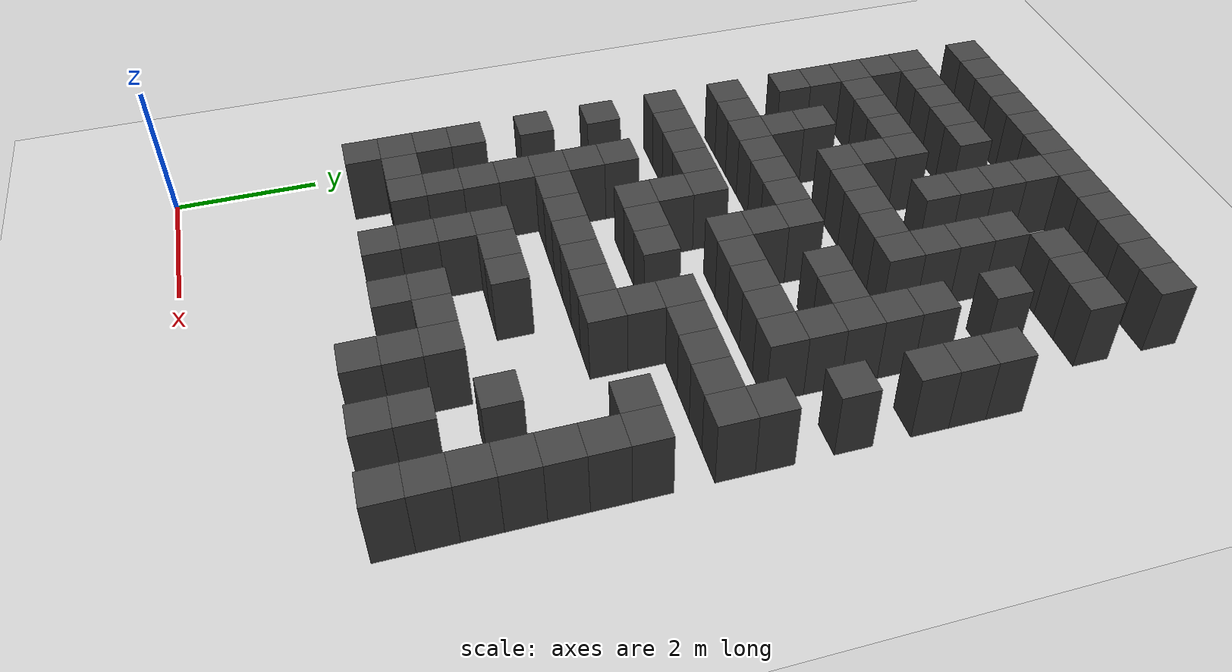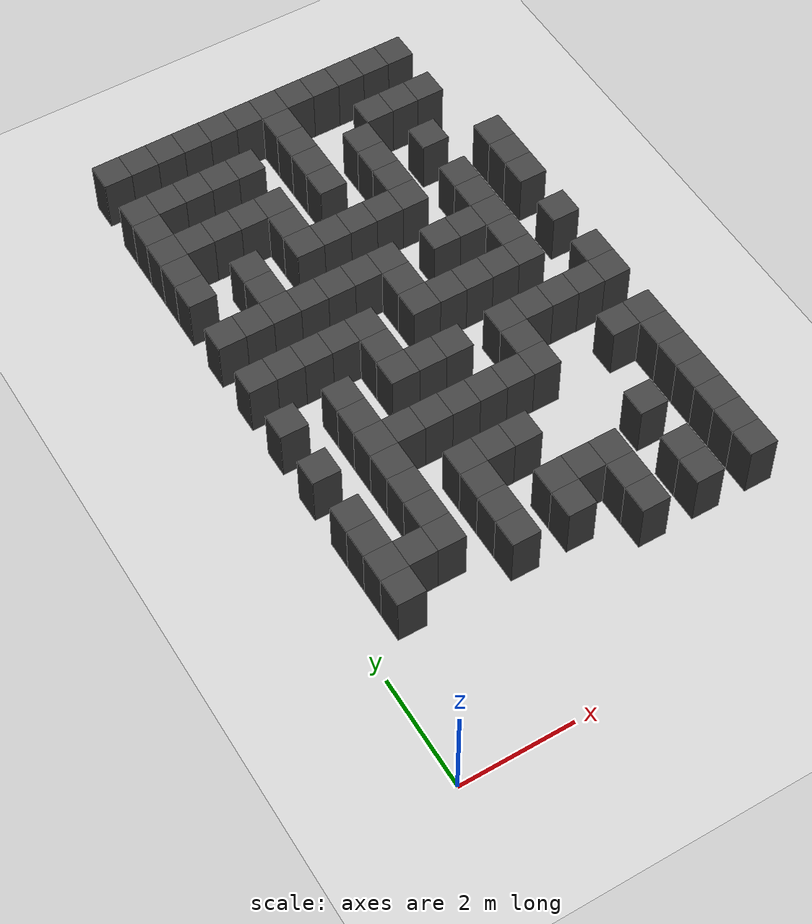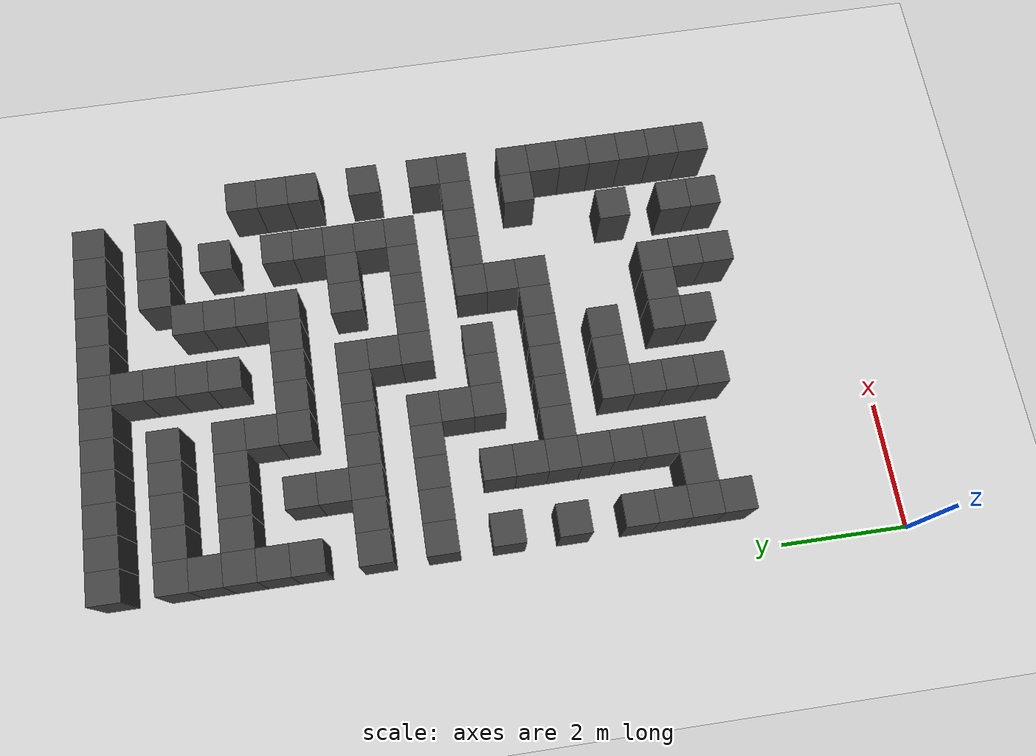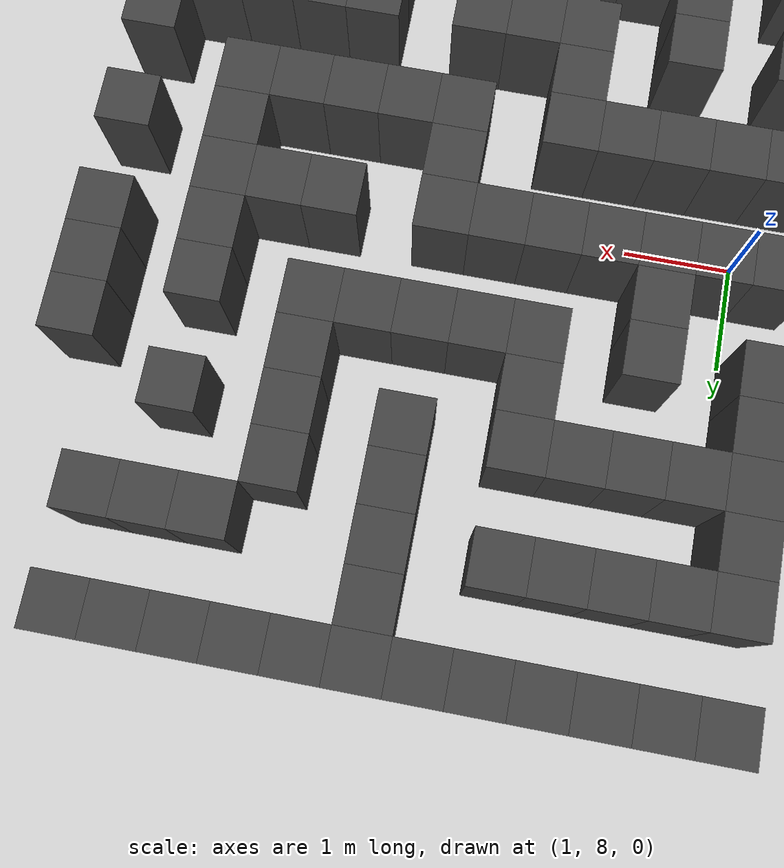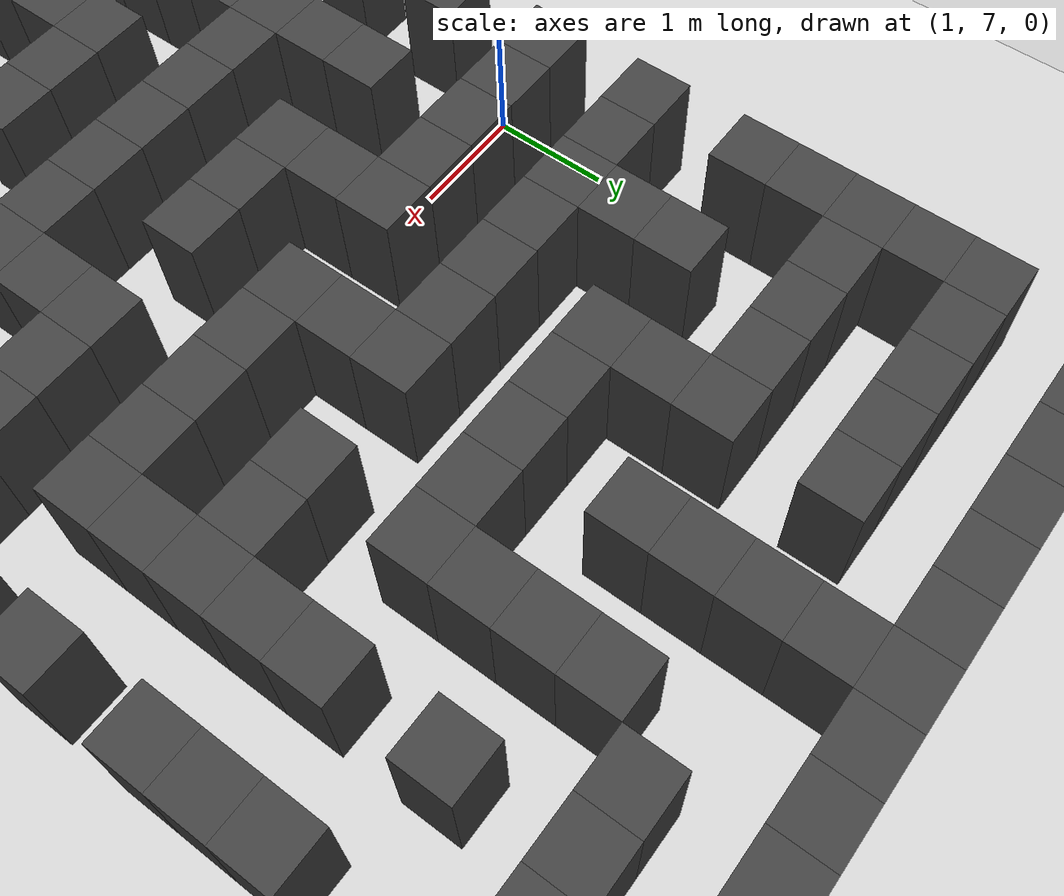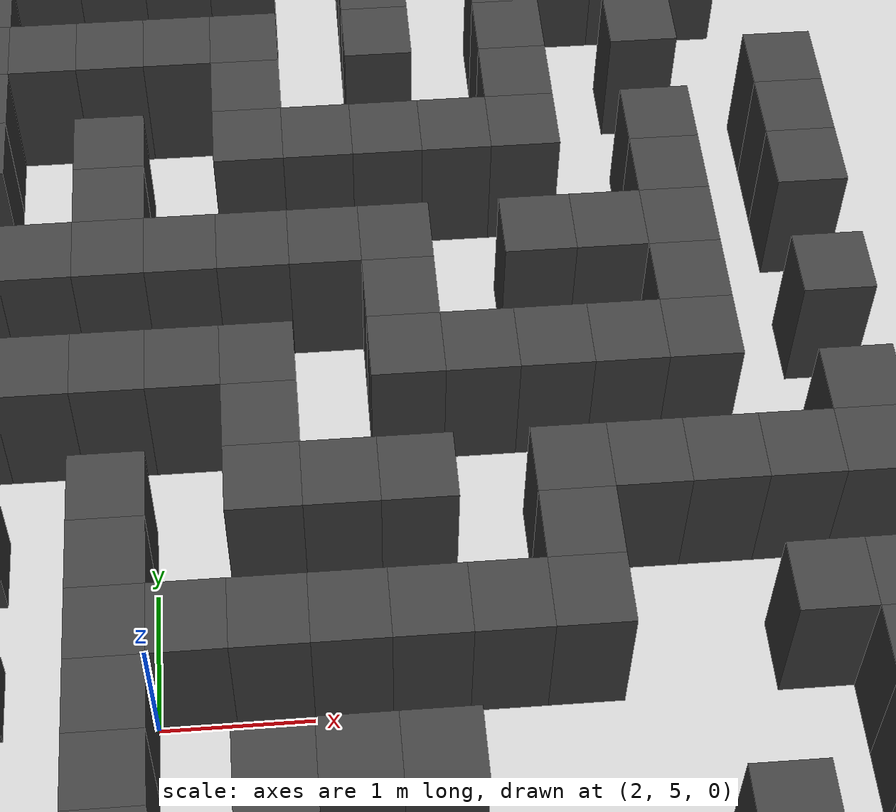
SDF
<sdf version="1.7">
 <world name="map_16783">
  <model name="ground_plane">
   <static>true</static>
   <link name="link">
    <collision name="collision">
     <geometry><plane><normal>0 0 1</normal><size>200 200</size></plane></geometry>
    </collision>
    <visual name="visual">
     <geometry><plane><normal>0 0 1</normal><size>200 200</size></plane></geometry>
     <material><ambient>0.8 0.8 0.8 1</ambient><diffuse>0.8 0.8 0.8 1</diffuse></material>
    </visual>
   </link>
  </model>
  <model name="maze_environment">
   <static>true</static>
   <link name="wall_26">
    <pose>0.750 12.250 0.500 0 0 0</pose>
    <collision name="col"><geometry><box><size>0.5 0.5 1.0</size></box></geometry></collision>
    <visual name="vis">
     <geometry><box><size>0.5 0.5 1.0</size></box></geometry>
     <material><ambient>0.15 0.15 0.15 1</ambient><diffuse>0.25 0.25 0.25 1</diffuse></material>
    </visual>
   </link>
   <link name="wall_27">
    <pose>1.250 12.250 0.500 0 0 0</pose>
    <collision name="col"><geometry><box><size>0.5 0.5 1.0</size></box></geometry></collision>
    <visual name="vis">
     <geometry><box><size>0.5 0.5 1.0</size></box></geometry>
     <material><ambient>0.15 0.15 0.15 1</ambient><diffuse>0.25 0.25 0.25 1</diffuse></material>
    </visual>
   </link>
   <link name="wall_28">
    <pose>1.750 12.250 0.500 0 0 0</pose>
    <collision name="col"><geometry><box><size>0.5 0.5 1.0</size></box></geometry></collision>
    <visual name="vis">
     <geometry><box><size>0.5 0.5 1.0</size></box></geometry>
     <material><ambient>0.15 0.15 0.15 1</ambient><diffuse>0.25 0.25 0.25 1</diffuse></material>
    </visual>
   </link>
   <link name="wall_29">
    <pose>2.250 12.250 0.500 0 0 0</pose>
    <collision name="col"><geometry><box><size>0.5 0.5 1.0</size></box></geometry></collision>
    <visual name="vis">
     <geometry><box><size>0.5 0.5 1.0</size></box></geometry>
     <material><ambient>0.15 0.15 0.15 1</ambient><diffuse>0.25 0.25 0.25 1</diffuse></material>
    </visual>
   </link>
   <link name="wall_30">
    <pose>2.750 12.250 0.500 0 0 0</pose>
    <collision name="col"><geometry><box><size>0.5 0.5 1.0</size></box></geometry></collision>
    <visual name="vis">
     <geometry><box><size>0.5 0.5 1.0</size></box></geometry>
     <material><ambient>0.15 0.15 0.15 1</ambient><diffuse>0.25 0.25 0.25 1</diffuse></material>
    </visual>
   </link>
   <link name="wall_31">
    <pose>3.250 12.250 0.500 0 0 0</pose>
    <collision name="col"><geometry><box><size>0.5 0.5 1.0</size></box></geometry></collision>
    <visual name="vis">
     <geometry><box><size>0.5 0.5 1.0</size></box></geometry>
     <material><ambient>0.15 0.15 0.15 1</ambient><diffuse>0.25 0.25 0.25 1</diffuse></material>
    </visual>
   </link>
   <link name="wall_32">
    <pose>3.750 12.250 0.500 0 0 0</pose>
    <collision name="col"><geometry><box><size>0.5 0.5 1.0</size></box></geometry></collision>
    <visual name="vis">
     <geometry><box><size>0.5 0.5 1.0</size></box></geometry>
     <material><ambient>0.15 0.15 0.15 1</ambient><diffuse>0.25 0.25 0.25 1</diffuse></material>
    </visual>
   </link>
   <link name="wall_33">
    <pose>4.250 12.250 0.500 0 0 0</pose>
    <collision name="col"><geometry><box><size>0.5 0.5 1.0</size></box></geometry></collision>
    <visual name="vis">
     <geometry><box><size>0.5 0.5 1.0</size></box></geometry>
     <material><ambient>0.15 0.15 0.15 1</ambient><diffuse>0.25 0.25 0.25 1</diffuse></material>
    </visual>
   </link>
   <link name="wall_34">
    <pose>4.750 12.250 0.500 0 0 0</pose>
    <collision name="col"><geometry><box><size>0.5 0.5 1.0</size></box></geometry></collision>
    <visual name="vis">
     <geometry><box><size>0.5 0.5 1.0</size></box></geometry>
     <material><ambient>0.15 0.15 0.15 1</ambient><diffuse>0.25 0.25 0.25 1</diffuse></material>
    </visual>
   </link>
   <link name="wall_35">
    <pose>5.250 12.250 0.500 0 0 0</pose>
    <collision name="col"><geometry><box><size>0.5 0.5 1.0</size></box></geometry></collision>
    <visual name="vis">
     <geometry><box><size>0.5 0.5 1.0</size></box></geometry>
     <material><ambient>0.15 0.15 0.15 1</ambient><diffuse>0.25 0.25 0.25 1</diffuse></material>
    </visual>
   </link>
   <link name="wall_36">
    <pose>5.750 12.250 0.500 0 0 0</pose>
    <collision name="col"><geometry><box><size>0.5 0.5 1.0</size></box></geometry></collision>
    <visual name="vis">
     <geometry><box><size>0.5 0.5 1.0</size></box></geometry>
     <material><ambient>0.15 0.15 0.15 1</ambient><diffuse>0.25 0.25 0.25 1</diffuse></material>
    </visual>
   </link>
   <link name="wall_37">
    <pose>6.250 12.250 0.500 0 0 0</pose>
    <collision name="col"><geometry><box><size>0.5 0.5 1.0</size></box></geometry></collision>
    <visual name="vis">
     <geometry><box><size>0.5 0.5 1.0</size></box></geometry>
     <material><ambient>0.15 0.15 0.15 1</ambient><diffuse>0.25 0.25 0.25 1</diffuse></material>
    </visual>
   </link>
   <link name="wall_55">
    <pose>3.750 11.750 0.500 0 0 0</pose>
    <collision name="col"><geometry><box><size>0.5 0.5 1.0</size></box></geometry></collision>
    <visual name="vis">
     <geometry><box><size>0.5 0.5 1.0</size></box></geometry>
     <material><ambient>0.15 0.15 0.15 1</ambient><diffuse>0.25 0.25 0.25 1</diffuse></material>
    </visual>
   </link>
   <link name="wall_76">
    <pose>0.750 11.250 0.500 0 0 0</pose>
    <collision name="col"><geometry><box><size>0.5 0.5 1.0</size></box></geometry></collision>
    <visual name="vis">
     <geometry><box><size>0.5 0.5 1.0</size></box></geometry>
     <material><ambient>0.15 0.15 0.15 1</ambient><diffuse>0.25 0.25 0.25 1</diffuse></material>
    </visual>
   </link>
   <link name="wall_77">
    <pose>1.250 11.250 0.500 0 0 0</pose>
    <collision name="col"><geometry><box><size>0.5 0.5 1.0</size></box></geometry></collision>
    <visual name="vis">
     <geometry><box><size>0.5 0.5 1.0</size></box></geometry>
     <material><ambient>0.15 0.15 0.15 1</ambient><diffuse>0.25 0.25 0.25 1</diffuse></material>
    </visual>
   </link>
   <link name="wall_78">
    <pose>1.750 11.250 0.500 0 0 0</pose>
    <collision name="col"><geometry><box><size>0.5 0.5 1.0</size></box></geometry></collision>
    <visual name="vis">
     <geometry><box><size>0.5 0.5 1.0</size></box></geometry>
     <material><ambient>0.15 0.15 0.15 1</ambient><diffuse>0.25 0.25 0.25 1</diffuse></material>
    </visual>
   </link>
   <link name="wall_79">
    <pose>2.250 11.250 0.500 0 0 0</pose>
    <collision name="col"><geometry><box><size>0.5 0.5 1.0</size></box></geometry></collision>
    <visual name="vis">
     <geometry><box><size>0.5 0.5 1.0</size></box></geometry>
     <material><ambient>0.15 0.15 0.15 1</ambient><diffuse>0.25 0.25 0.25 1</diffuse></material>
    </visual>
   </link>
   <link name="wall_80">
    <pose>2.750 11.250 0.500 0 0 0</pose>
    <collision name="col"><geometry><box><size>0.5 0.5 1.0</size></box></geometry></collision>
    <visual name="vis">
     <geometry><box><size>0.5 0.5 1.0</size></box></geometry>
     <material><ambient>0.15 0.15 0.15 1</ambient><diffuse>0.25 0.25 0.25 1</diffuse></material>
    </visual>
   </link>
   <link name="wall_81">
    <pose>3.750 11.250 0.500 0 0 0</pose>
    <collision name="col"><geometry><box><size>0.5 0.5 1.0</size></box></geometry></collision>
    <visual name="vis">
     <geometry><box><size>0.5 0.5 1.0</size></box></geometry>
     <material><ambient>0.15 0.15 0.15 1</ambient><diffuse>0.25 0.25 0.25 1</diffuse></material>
    </visual>
   </link>
   <link name="wall_82">
    <pose>5.250 11.250 0.500 0 0 0</pose>
    <collision name="col"><geometry><box><size>0.5 0.5 1.0</size></box></geometry></collision>
    <visual name="vis">
     <geometry><box><size>0.5 0.5 1.0</size></box></geometry>
     <material><ambient>0.15 0.15 0.15 1</ambient><diffuse>0.25 0.25 0.25 1</diffuse></material>
    </visual>
   </link>
   <link name="wall_83">
    <pose>5.750 11.250 0.500 0 0 0</pose>
    <collision name="col"><geometry><box><size>0.5 0.5 1.0</size></box></geometry></collision>
    <visual name="vis">
     <geometry><box><size>0.5 0.5 1.0</size></box></geometry>
     <material><ambient>0.15 0.15 0.15 1</ambient><diffuse>0.25 0.25 0.25 1</diffuse></material>
    </visual>
   </link>
   <link name="wall_84">
    <pose>6.250 11.250 0.500 0 0 0</pose>
    <collision name="col"><geometry><box><size>0.5 0.5 1.0</size></box></geometry></collision>
    <visual name="vis">
     <geometry><box><size>0.5 0.5 1.0</size></box></geometry>
     <material><ambient>0.15 0.15 0.15 1</ambient><diffuse>0.25 0.25 0.25 1</diffuse></material>
    </visual>
   </link>
   <link name="wall_100">
    <pose>0.750 10.750 0.500 0 0 0</pose>
    <collision name="col"><geometry><box><size>0.5 0.5 1.0</size></box></geometry></collision>
    <visual name="vis">
     <geometry><box><size>0.5 0.5 1.0</size></box></geometry>
     <material><ambient>0.15 0.15 0.15 1</ambient><diffuse>0.25 0.25 0.25 1</diffuse></material>
    </visual>
   </link>
   <link name="wall_101">
    <pose>3.750 10.750 0.500 0 0 0</pose>
    <collision name="col"><geometry><box><size>0.5 0.5 1.0</size></box></geometry></collision>
    <visual name="vis">
     <geometry><box><size>0.5 0.5 1.0</size></box></geometry>
     <material><ambient>0.15 0.15 0.15 1</ambient><diffuse>0.25 0.25 0.25 1</diffuse></material>
    </visual>
   </link>
   <link name="wall_102">
    <pose>4.750 10.750 0.500 0 0 0</pose>
    <collision name="col"><geometry><box><size>0.5 0.5 1.0</size></box></geometry></collision>
    <visual name="vis">
     <geometry><box><size>0.5 0.5 1.0</size></box></geometry>
     <material><ambient>0.15 0.15 0.15 1</ambient><diffuse>0.25 0.25 0.25 1</diffuse></material>
    </visual>
   </link>
   <link name="wall_124">
    <pose>0.750 10.250 0.500 0 0 0</pose>
    <collision name="col"><geometry><box><size>0.5 0.5 1.0</size></box></geometry></collision>
    <visual name="vis">
     <geometry><box><size>0.5 0.5 1.0</size></box></geometry>
     <material><ambient>0.15 0.15 0.15 1</ambient><diffuse>0.25 0.25 0.25 1</diffuse></material>
    </visual>
   </link>
   <link name="wall_125">
    <pose>1.250 10.250 0.500 0 0 0</pose>
    <collision name="col"><geometry><box><size>0.5 0.5 1.0</size></box></geometry></collision>
    <visual name="vis">
     <geometry><box><size>0.5 0.5 1.0</size></box></geometry>
     <material><ambient>0.15 0.15 0.15 1</ambient><diffuse>0.25 0.25 0.25 1</diffuse></material>
    </visual>
   </link>
   <link name="wall_126">
    <pose>1.750 10.250 0.500 0 0 0</pose>
    <collision name="col"><geometry><box><size>0.5 0.5 1.0</size></box></geometry></collision>
    <visual name="vis">
     <geometry><box><size>0.5 0.5 1.0</size></box></geometry>
     <material><ambient>0.15 0.15 0.15 1</ambient><diffuse>0.25 0.25 0.25 1</diffuse></material>
    </visual>
   </link>
   <link name="wall_127">
    <pose>2.250 10.250 0.500 0 0 0</pose>
    <collision name="col"><geometry><box><size>0.5 0.5 1.0</size></box></geometry></collision>
    <visual name="vis">
     <geometry><box><size>0.5 0.5 1.0</size></box></geometry>
     <material><ambient>0.15 0.15 0.15 1</ambient><diffuse>0.25 0.25 0.25 1</diffuse></material>
    </visual>
   </link>
   <link name="wall_128">
    <pose>2.750 10.250 0.500 0 0 0</pose>
    <collision name="col"><geometry><box><size>0.5 0.5 1.0</size></box></geometry></collision>
    <visual name="vis">
     <geometry><box><size>0.5 0.5 1.0</size></box></geometry>
     <material><ambient>0.15 0.15 0.15 1</ambient><diffuse>0.25 0.25 0.25 1</diffuse></material>
    </visual>
   </link>
   <link name="wall_129">
    <pose>3.750 10.250 0.500 0 0 0</pose>
    <collision name="col"><geometry><box><size>0.5 0.5 1.0</size></box></geometry></collision>
    <visual name="vis">
     <geometry><box><size>0.5 0.5 1.0</size></box></geometry>
     <material><ambient>0.15 0.15 0.15 1</ambient><diffuse>0.25 0.25 0.25 1</diffuse></material>
    </visual>
   </link>
   <link name="wall_130">
    <pose>4.750 10.250 0.500 0 0 0</pose>
    <collision name="col"><geometry><box><size>0.5 0.5 1.0</size></box></geometry></collision>
    <visual name="vis">
     <geometry><box><size>0.5 0.5 1.0</size></box></geometry>
     <material><ambient>0.15 0.15 0.15 1</ambient><diffuse>0.25 0.25 0.25 1</diffuse></material>
    </visual>
   </link>
   <link name="wall_131">
    <pose>5.750 10.250 0.500 0 0 0</pose>
    <collision name="col"><geometry><box><size>0.5 0.5 1.0</size></box></geometry></collision>
    <visual name="vis">
     <geometry><box><size>0.5 0.5 1.0</size></box></geometry>
     <material><ambient>0.15 0.15 0.15 1</ambient><diffuse>0.25 0.25 0.25 1</diffuse></material>
    </visual>
   </link>
   <link name="wall_147">
    <pose>0.750 9.750 0.500 0 0 0</pose>
    <collision name="col"><geometry><box><size>0.5 0.5 1.0</size></box></geometry></collision>
    <visual name="vis">
     <geometry><box><size>0.5 0.5 1.0</size></box></geometry>
     <material><ambient>0.15 0.15 0.15 1</ambient><diffuse>0.25 0.25 0.25 1</diffuse></material>
    </visual>
   </link>
   <link name="wall_148">
    <pose>2.750 9.750 0.500 0 0 0</pose>
    <collision name="col"><geometry><box><size>0.5 0.5 1.0</size></box></geometry></collision>
    <visual name="vis">
     <geometry><box><size>0.5 0.5 1.0</size></box></geometry>
     <material><ambient>0.15 0.15 0.15 1</ambient><diffuse>0.25 0.25 0.25 1</diffuse></material>
    </visual>
   </link>
   <link name="wall_149">
    <pose>4.750 9.750 0.500 0 0 0</pose>
    <collision name="col"><geometry><box><size>0.5 0.5 1.0</size></box></geometry></collision>
    <visual name="vis">
     <geometry><box><size>0.5 0.5 1.0</size></box></geometry>
     <material><ambient>0.15 0.15 0.15 1</ambient><diffuse>0.25 0.25 0.25 1</diffuse></material>
    </visual>
   </link>
   <link name="wall_150">
    <pose>6.750 9.750 0.500 0 0 0</pose>
    <collision name="col"><geometry><box><size>0.5 0.5 1.0</size></box></geometry></collision>
    <visual name="vis">
     <geometry><box><size>0.5 0.5 1.0</size></box></geometry>
     <material><ambient>0.15 0.15 0.15 1</ambient><diffuse>0.25 0.25 0.25 1</diffuse></material>
    </visual>
   </link>
   <link name="wall_170">
    <pose>0.750 9.250 0.500 0 0 0</pose>
    <collision name="col"><geometry><box><size>0.5 0.5 1.0</size></box></geometry></collision>
    <visual name="vis">
     <geometry><box><size>0.5 0.5 1.0</size></box></geometry>
     <material><ambient>0.15 0.15 0.15 1</ambient><diffuse>0.25 0.25 0.25 1</diffuse></material>
    </visual>
   </link>
   <link name="wall_171">
    <pose>1.750 9.250 0.500 0 0 0</pose>
    <collision name="col"><geometry><box><size>0.5 0.5 1.0</size></box></geometry></collision>
    <visual name="vis">
     <geometry><box><size>0.5 0.5 1.0</size></box></geometry>
     <material><ambient>0.15 0.15 0.15 1</ambient><diffuse>0.25 0.25 0.25 1</diffuse></material>
    </visual>
   </link>
   <link name="wall_172">
    <pose>2.750 9.250 0.500 0 0 0</pose>
    <collision name="col"><geometry><box><size>0.5 0.5 1.0</size></box></geometry></collision>
    <visual name="vis">
     <geometry><box><size>0.5 0.5 1.0</size></box></geometry>
     <material><ambient>0.15 0.15 0.15 1</ambient><diffuse>0.25 0.25 0.25 1</diffuse></material>
    </visual>
   </link>
   <link name="wall_173">
    <pose>3.250 9.250 0.500 0 0 0</pose>
    <collision name="col"><geometry><box><size>0.5 0.5 1.0</size></box></geometry></collision>
    <visual name="vis">
     <geometry><box><size>0.5 0.5 1.0</size></box></geometry>
     <material><ambient>0.15 0.15 0.15 1</ambient><diffuse>0.25 0.25 0.25 1</diffuse></material>
    </visual>
   </link>
   <link name="wall_174">
    <pose>3.750 9.250 0.500 0 0 0</pose>
    <collision name="col"><geometry><box><size>0.5 0.5 1.0</size></box></geometry></collision>
    <visual name="vis">
     <geometry><box><size>0.5 0.5 1.0</size></box></geometry>
     <material><ambient>0.15 0.15 0.15 1</ambient><diffuse>0.25 0.25 0.25 1</diffuse></material>
    </visual>
   </link>
   <link name="wall_175">
    <pose>4.250 9.250 0.500 0 0 0</pose>
    <collision name="col"><geometry><box><size>0.5 0.5 1.0</size></box></geometry></collision>
    <visual name="vis">
     <geometry><box><size>0.5 0.5 1.0</size></box></geometry>
     <material><ambient>0.15 0.15 0.15 1</ambient><diffuse>0.25 0.25 0.25 1</diffuse></material>
    </visual>
   </link>
   <link name="wall_176">
    <pose>4.750 9.250 0.500 0 0 0</pose>
    <collision name="col"><geometry><box><size>0.5 0.5 1.0</size></box></geometry></collision>
    <visual name="vis">
     <geometry><box><size>0.5 0.5 1.0</size></box></geometry>
     <material><ambient>0.15 0.15 0.15 1</ambient><diffuse>0.25 0.25 0.25 1</diffuse></material>
    </visual>
   </link>
   <link name="wall_177">
    <pose>5.750 9.250 0.500 0 0 0</pose>
    <collision name="col"><geometry><box><size>0.5 0.5 1.0</size></box></geometry></collision>
    <visual name="vis">
     <geometry><box><size>0.5 0.5 1.0</size></box></geometry>
     <material><ambient>0.15 0.15 0.15 1</ambient><diffuse>0.25 0.25 0.25 1</diffuse></material>
    </visual>
   </link>
   <link name="wall_178">
    <pose>6.750 9.250 0.500 0 0 0</pose>
    <collision name="col"><geometry><box><size>0.5 0.5 1.0</size></box></geometry></collision>
    <visual name="vis">
     <geometry><box><size>0.5 0.5 1.0</size></box></geometry>
     <material><ambient>0.15 0.15 0.15 1</ambient><diffuse>0.25 0.25 0.25 1</diffuse></material>
    </visual>
   </link>
   <link name="wall_195">
    <pose>1.750 8.750 0.500 0 0 0</pose>
    <collision name="col"><geometry><box><size>0.5 0.5 1.0</size></box></geometry></collision>
    <visual name="vis">
     <geometry><box><size>0.5 0.5 1.0</size></box></geometry>
     <material><ambient>0.15 0.15 0.15 1</ambient><diffuse>0.25 0.25 0.25 1</diffuse></material>
    </visual>
   </link>
   <link name="wall_196">
    <pose>5.750 8.750 0.500 0 0 0</pose>
    <collision name="col"><geometry><box><size>0.5 0.5 1.0</size></box></geometry></collision>
    <visual name="vis">
     <geometry><box><size>0.5 0.5 1.0</size></box></geometry>
     <material><ambient>0.15 0.15 0.15 1</ambient><diffuse>0.25 0.25 0.25 1</diffuse></material>
    </visual>
   </link>
   <link name="wall_197">
    <pose>6.750 8.750 0.500 0 0 0</pose>
    <collision name="col"><geometry><box><size>0.5 0.5 1.0</size></box></geometry></collision>
    <visual name="vis">
     <geometry><box><size>0.5 0.5 1.0</size></box></geometry>
     <material><ambient>0.15 0.15 0.15 1</ambient><diffuse>0.25 0.25 0.25 1</diffuse></material>
    </visual>
   </link>
   <link name="wall_219">
    <pose>0.750 8.250 0.500 0 0 0</pose>
    <collision name="col"><geometry><box><size>0.5 0.5 1.0</size></box></geometry></collision>
    <visual name="vis">
     <geometry><box><size>0.5 0.5 1.0</size></box></geometry>
     <material><ambient>0.15 0.15 0.15 1</ambient><diffuse>0.25 0.25 0.25 1</diffuse></material>
    </visual>
   </link>
   <link name="wall_220">
    <pose>1.250 8.250 0.500 0 0 0</pose>
    <collision name="col"><geometry><box><size>0.5 0.5 1.0</size></box></geometry></collision>
    <visual name="vis">
     <geometry><box><size>0.5 0.5 1.0</size></box></geometry>
     <material><ambient>0.15 0.15 0.15 1</ambient><diffuse>0.25 0.25 0.25 1</diffuse></material>
    </visual>
   </link>
   <link name="wall_221">
    <pose>1.750 8.250 0.500 0 0 0</pose>
    <collision name="col"><geometry><box><size>0.5 0.5 1.0</size></box></geometry></collision>
    <visual name="vis">
     <geometry><box><size>0.5 0.5 1.0</size></box></geometry>
     <material><ambient>0.15 0.15 0.15 1</ambient><diffuse>0.25 0.25 0.25 1</diffuse></material>
    </visual>
   </link>
   <link name="wall_222">
    <pose>2.250 8.250 0.500 0 0 0</pose>
    <collision name="col"><geometry><box><size>0.5 0.5 1.0</size></box></geometry></collision>
    <visual name="vis">
     <geometry><box><size>0.5 0.5 1.0</size></box></geometry>
     <material><ambient>0.15 0.15 0.15 1</ambient><diffuse>0.25 0.25 0.25 1</diffuse></material>
    </visual>
   </link>
   <link name="wall_223">
    <pose>2.750 8.250 0.500 0 0 0</pose>
    <collision name="col"><geometry><box><size>0.5 0.5 1.0</size></box></geometry></collision>
    <visual name="vis">
     <geometry><box><size>0.5 0.5 1.0</size></box></geometry>
     <material><ambient>0.15 0.15 0.15 1</ambient><diffuse>0.25 0.25 0.25 1</diffuse></material>
    </visual>
   </link>
   <link name="wall_224">
    <pose>3.250 8.250 0.500 0 0 0</pose>
    <collision name="col"><geometry><box><size>0.5 0.5 1.0</size></box></geometry></collision>
    <visual name="vis">
     <geometry><box><size>0.5 0.5 1.0</size></box></geometry>
     <material><ambient>0.15 0.15 0.15 1</ambient><diffuse>0.25 0.25 0.25 1</diffuse></material>
    </visual>
   </link>
   <link name="wall_225">
    <pose>3.750 8.250 0.500 0 0 0</pose>
    <collision name="col"><geometry><box><size>0.5 0.5 1.0</size></box></geometry></collision>
    <visual name="vis">
     <geometry><box><size>0.5 0.5 1.0</size></box></geometry>
     <material><ambient>0.15 0.15 0.15 1</ambient><diffuse>0.25 0.25 0.25 1</diffuse></material>
    </visual>
   </link>
   <link name="wall_226">
    <pose>4.750 8.250 0.500 0 0 0</pose>
    <collision name="col"><geometry><box><size>0.5 0.5 1.0</size></box></geometry></collision>
    <visual name="vis">
     <geometry><box><size>0.5 0.5 1.0</size></box></geometry>
     <material><ambient>0.15 0.15 0.15 1</ambient><diffuse>0.25 0.25 0.25 1</diffuse></material>
    </visual>
   </link>
   <link name="wall_227">
    <pose>5.250 8.250 0.500 0 0 0</pose>
    <collision name="col"><geometry><box><size>0.5 0.5 1.0</size></box></geometry></collision>
    <visual name="vis">
     <geometry><box><size>0.5 0.5 1.0</size></box></geometry>
     <material><ambient>0.15 0.15 0.15 1</ambient><diffuse>0.25 0.25 0.25 1</diffuse></material>
    </visual>
   </link>
   <link name="wall_228">
    <pose>5.750 8.250 0.500 0 0 0</pose>
    <collision name="col"><geometry><box><size>0.5 0.5 1.0</size></box></geometry></collision>
    <visual name="vis">
     <geometry><box><size>0.5 0.5 1.0</size></box></geometry>
     <material><ambient>0.15 0.15 0.15 1</ambient><diffuse>0.25 0.25 0.25 1</diffuse></material>
    </visual>
   </link>
   <link name="wall_243">
    <pose>3.750 7.750 0.500 0 0 0</pose>
    <collision name="col"><geometry><box><size>0.5 0.5 1.0</size></box></geometry></collision>
    <visual name="vis">
     <geometry><box><size>0.5 0.5 1.0</size></box></geometry>
     <material><ambient>0.15 0.15 0.15 1</ambient><diffuse>0.25 0.25 0.25 1</diffuse></material>
    </visual>
   </link>
   <link name="wall_244">
    <pose>5.750 7.750 0.500 0 0 0</pose>
    <collision name="col"><geometry><box><size>0.5 0.5 1.0</size></box></geometry></collision>
    <visual name="vis">
     <geometry><box><size>0.5 0.5 1.0</size></box></geometry>
     <material><ambient>0.15 0.15 0.15 1</ambient><diffuse>0.25 0.25 0.25 1</diffuse></material>
    </visual>
   </link>
   <link name="wall_245">
    <pose>6.750 7.750 0.500 0 0 0</pose>
    <collision name="col"><geometry><box><size>0.5 0.5 1.0</size></box></geometry></collision>
    <visual name="vis">
     <geometry><box><size>0.5 0.5 1.0</size></box></geometry>
     <material><ambient>0.15 0.15 0.15 1</ambient><diffuse>0.25 0.25 0.25 1</diffuse></material>
    </visual>
   </link>
   <link name="wall_266">
    <pose>0.750 7.250 0.500 0 0 0</pose>
    <collision name="col"><geometry><box><size>0.5 0.5 1.0</size></box></geometry></collision>
    <visual name="vis">
     <geometry><box><size>0.5 0.5 1.0</size></box></geometry>
     <material><ambient>0.15 0.15 0.15 1</ambient><diffuse>0.25 0.25 0.25 1</diffuse></material>
    </visual>
   </link>
   <link name="wall_267">
    <pose>1.250 7.250 0.500 0 0 0</pose>
    <collision name="col"><geometry><box><size>0.5 0.5 1.0</size></box></geometry></collision>
    <visual name="vis">
     <geometry><box><size>0.5 0.5 1.0</size></box></geometry>
     <material><ambient>0.15 0.15 0.15 1</ambient><diffuse>0.25 0.25 0.25 1</diffuse></material>
    </visual>
   </link>
   <link name="wall_268">
    <pose>1.750 7.250 0.500 0 0 0</pose>
    <collision name="col"><geometry><box><size>0.5 0.5 1.0</size></box></geometry></collision>
    <visual name="vis">
     <geometry><box><size>0.5 0.5 1.0</size></box></geometry>
     <material><ambient>0.15 0.15 0.15 1</ambient><diffuse>0.25 0.25 0.25 1</diffuse></material>
    </visual>
   </link>
   <link name="wall_269">
    <pose>2.250 7.250 0.500 0 0 0</pose>
    <collision name="col"><geometry><box><size>0.5 0.5 1.0</size></box></geometry></collision>
    <visual name="vis">
     <geometry><box><size>0.5 0.5 1.0</size></box></geometry>
     <material><ambient>0.15 0.15 0.15 1</ambient><diffuse>0.25 0.25 0.25 1</diffuse></material>
    </visual>
   </link>
   <link name="wall_270">
    <pose>2.750 7.250 0.500 0 0 0</pose>
    <collision name="col"><geometry><box><size>0.5 0.5 1.0</size></box></geometry></collision>
    <visual name="vis">
     <geometry><box><size>0.5 0.5 1.0</size></box></geometry>
     <material><ambient>0.15 0.15 0.15 1</ambient><diffuse>0.25 0.25 0.25 1</diffuse></material>
    </visual>
   </link>
   <link name="wall_271">
    <pose>3.750 7.250 0.500 0 0 0</pose>
    <collision name="col"><geometry><box><size>0.5 0.5 1.0</size></box></geometry></collision>
    <visual name="vis">
     <geometry><box><size>0.5 0.5 1.0</size></box></geometry>
     <material><ambient>0.15 0.15 0.15 1</ambient><diffuse>0.25 0.25 0.25 1</diffuse></material>
    </visual>
   </link>
   <link name="wall_272">
    <pose>4.250 7.250 0.500 0 0 0</pose>
    <collision name="col"><geometry><box><size>0.5 0.5 1.0</size></box></geometry></collision>
    <visual name="vis">
     <geometry><box><size>0.5 0.5 1.0</size></box></geometry>
     <material><ambient>0.15 0.15 0.15 1</ambient><diffuse>0.25 0.25 0.25 1</diffuse></material>
    </visual>
   </link>
   <link name="wall_273">
    <pose>4.750 7.250 0.500 0 0 0</pose>
    <collision name="col"><geometry><box><size>0.5 0.5 1.0</size></box></geometry></collision>
    <visual name="vis">
     <geometry><box><size>0.5 0.5 1.0</size></box></geometry>
     <material><ambient>0.15 0.15 0.15 1</ambient><diffuse>0.25 0.25 0.25 1</diffuse></material>
    </visual>
   </link>
   <link name="wall_274">
    <pose>5.250 7.250 0.500 0 0 0</pose>
    <collision name="col"><geometry><box><size>0.5 0.5 1.0</size></box></geometry></collision>
    <visual name="vis">
     <geometry><box><size>0.5 0.5 1.0</size></box></geometry>
     <material><ambient>0.15 0.15 0.15 1</ambient><diffuse>0.25 0.25 0.25 1</diffuse></material>
    </visual>
   </link>
   <link name="wall_275">
    <pose>5.750 7.250 0.500 0 0 0</pose>
    <collision name="col"><geometry><box><size>0.5 0.5 1.0</size></box></geometry></collision>
    <visual name="vis">
     <geometry><box><size>0.5 0.5 1.0</size></box></geometry>
     <material><ambient>0.15 0.15 0.15 1</ambient><diffuse>0.25 0.25 0.25 1</diffuse></material>
    </visual>
   </link>
   <link name="wall_290">
    <pose>2.750 6.750 0.500 0 0 0</pose>
    <collision name="col"><geometry><box><size>0.5 0.5 1.0</size></box></geometry></collision>
    <visual name="vis">
     <geometry><box><size>0.5 0.5 1.0</size></box></geometry>
     <material><ambient>0.15 0.15 0.15 1</ambient><diffuse>0.25 0.25 0.25 1</diffuse></material>
    </visual>
   </link>
   <link name="wall_291">
    <pose>6.750 6.750 0.500 0 0 0</pose>
    <collision name="col"><geometry><box><size>0.5 0.5 1.0</size></box></geometry></collision>
    <visual name="vis">
     <geometry><box><size>0.5 0.5 1.0</size></box></geometry>
     <material><ambient>0.15 0.15 0.15 1</ambient><diffuse>0.25 0.25 0.25 1</diffuse></material>
    </visual>
   </link>
   <link name="wall_313">
    <pose>0.750 6.250 0.500 0 0 0</pose>
    <collision name="col"><geometry><box><size>0.5 0.5 1.0</size></box></geometry></collision>
    <visual name="vis">
     <geometry><box><size>0.5 0.5 1.0</size></box></geometry>
     <material><ambient>0.15 0.15 0.15 1</ambient><diffuse>0.25 0.25 0.25 1</diffuse></material>
    </visual>
   </link>
   <link name="wall_314">
    <pose>1.750 6.250 0.500 0 0 0</pose>
    <collision name="col"><geometry><box><size>0.5 0.5 1.0</size></box></geometry></collision>
    <visual name="vis">
     <geometry><box><size>0.5 0.5 1.0</size></box></geometry>
     <material><ambient>0.15 0.15 0.15 1</ambient><diffuse>0.25 0.25 0.25 1</diffuse></material>
    </visual>
   </link>
   <link name="wall_315">
    <pose>2.750 6.250 0.500 0 0 0</pose>
    <collision name="col"><geometry><box><size>0.5 0.5 1.0</size></box></geometry></collision>
    <visual name="vis">
     <geometry><box><size>0.5 0.5 1.0</size></box></geometry>
     <material><ambient>0.15 0.15 0.15 1</ambient><diffuse>0.25 0.25 0.25 1</diffuse></material>
    </visual>
   </link>
   <link name="wall_316">
    <pose>3.250 6.250 0.500 0 0 0</pose>
    <collision name="col"><geometry><box><size>0.5 0.5 1.0</size></box></geometry></collision>
    <visual name="vis">
     <geometry><box><size>0.5 0.5 1.0</size></box></geometry>
     <material><ambient>0.15 0.15 0.15 1</ambient><diffuse>0.25 0.25 0.25 1</diffuse></material>
    </visual>
   </link>
   <link name="wall_317">
    <pose>3.750 6.250 0.500 0 0 0</pose>
    <collision name="col"><geometry><box><size>0.5 0.5 1.0</size></box></geometry></collision>
    <visual name="vis">
     <geometry><box><size>0.5 0.5 1.0</size></box></geometry>
     <material><ambient>0.15 0.15 0.15 1</ambient><diffuse>0.25 0.25 0.25 1</diffuse></material>
    </visual>
   </link>
   <link name="wall_318">
    <pose>4.750 6.250 0.500 0 0 0</pose>
    <collision name="col"><geometry><box><size>0.5 0.5 1.0</size></box></geometry></collision>
    <visual name="vis">
     <geometry><box><size>0.5 0.5 1.0</size></box></geometry>
     <material><ambient>0.15 0.15 0.15 1</ambient><diffuse>0.25 0.25 0.25 1</diffuse></material>
    </visual>
   </link>
   <link name="wall_319">
    <pose>5.250 6.250 0.500 0 0 0</pose>
    <collision name="col"><geometry><box><size>0.5 0.5 1.0</size></box></geometry></collision>
    <visual name="vis">
     <geometry><box><size>0.5 0.5 1.0</size></box></geometry>
     <material><ambient>0.15 0.15 0.15 1</ambient><diffuse>0.25 0.25 0.25 1</diffuse></material>
    </visual>
   </link>
   <link name="wall_320">
    <pose>5.750 6.250 0.500 0 0 0</pose>
    <collision name="col"><geometry><box><size>0.5 0.5 1.0</size></box></geometry></collision>
    <visual name="vis">
     <geometry><box><size>0.5 0.5 1.0</size></box></geometry>
     <material><ambient>0.15 0.15 0.15 1</ambient><diffuse>0.25 0.25 0.25 1</diffuse></material>
    </visual>
   </link>
   <link name="wall_321">
    <pose>6.250 6.250 0.500 0 0 0</pose>
    <collision name="col"><geometry><box><size>0.5 0.5 1.0</size></box></geometry></collision>
    <visual name="vis">
     <geometry><box><size>0.5 0.5 1.0</size></box></geometry>
     <material><ambient>0.15 0.15 0.15 1</ambient><diffuse>0.25 0.25 0.25 1</diffuse></material>
    </visual>
   </link>
   <link name="wall_322">
    <pose>6.750 6.250 0.500 0 0 0</pose>
    <collision name="col"><geometry><box><size>0.5 0.5 1.0</size></box></geometry></collision>
    <visual name="vis">
     <geometry><box><size>0.5 0.5 1.0</size></box></geometry>
     <material><ambient>0.15 0.15 0.15 1</ambient><diffuse>0.25 0.25 0.25 1</diffuse></material>
    </visual>
   </link>
   <link name="wall_338">
    <pose>1.750 5.750 0.500 0 0 0</pose>
    <collision name="col"><geometry><box><size>0.5 0.5 1.0</size></box></geometry></collision>
    <visual name="vis">
     <geometry><box><size>0.5 0.5 1.0</size></box></geometry>
     <material><ambient>0.15 0.15 0.15 1</ambient><diffuse>0.25 0.25 0.25 1</diffuse></material>
    </visual>
   </link>
   <link name="wall_339">
    <pose>4.750 5.750 0.500 0 0 0</pose>
    <collision name="col"><geometry><box><size>0.5 0.5 1.0</size></box></geometry></collision>
    <visual name="vis">
     <geometry><box><size>0.5 0.5 1.0</size></box></geometry>
     <material><ambient>0.15 0.15 0.15 1</ambient><diffuse>0.25 0.25 0.25 1</diffuse></material>
    </visual>
   </link>
   <link name="wall_363">
    <pose>0.750 5.250 0.500 0 0 0</pose>
    <collision name="col"><geometry><box><size>0.5 0.5 1.0</size></box></geometry></collision>
    <visual name="vis">
     <geometry><box><size>0.5 0.5 1.0</size></box></geometry>
     <material><ambient>0.15 0.15 0.15 1</ambient><diffuse>0.25 0.25 0.25 1</diffuse></material>
    </visual>
   </link>
   <link name="wall_364">
    <pose>1.750 5.250 0.500 0 0 0</pose>
    <collision name="col"><geometry><box><size>0.5 0.5 1.0</size></box></geometry></collision>
    <visual name="vis">
     <geometry><box><size>0.5 0.5 1.0</size></box></geometry>
     <material><ambient>0.15 0.15 0.15 1</ambient><diffuse>0.25 0.25 0.25 1</diffuse></material>
    </visual>
   </link>
   <link name="wall_365">
    <pose>2.250 5.250 0.500 0 0 0</pose>
    <collision name="col"><geometry><box><size>0.5 0.5 1.0</size></box></geometry></collision>
    <visual name="vis">
     <geometry><box><size>0.5 0.5 1.0</size></box></geometry>
     <material><ambient>0.15 0.15 0.15 1</ambient><diffuse>0.25 0.25 0.25 1</diffuse></material>
    </visual>
   </link>
   <link name="wall_366">
    <pose>2.750 5.250 0.500 0 0 0</pose>
    <collision name="col"><geometry><box><size>0.5 0.5 1.0</size></box></geometry></collision>
    <visual name="vis">
     <geometry><box><size>0.5 0.5 1.0</size></box></geometry>
     <material><ambient>0.15 0.15 0.15 1</ambient><diffuse>0.25 0.25 0.25 1</diffuse></material>
    </visual>
   </link>
   <link name="wall_367">
    <pose>3.250 5.250 0.500 0 0 0</pose>
    <collision name="col"><geometry><box><size>0.5 0.5 1.0</size></box></geometry></collision>
    <visual name="vis">
     <geometry><box><size>0.5 0.5 1.0</size></box></geometry>
     <material><ambient>0.15 0.15 0.15 1</ambient><diffuse>0.25 0.25 0.25 1</diffuse></material>
    </visual>
   </link>
   <link name="wall_368">
    <pose>3.750 5.250 0.500 0 0 0</pose>
    <collision name="col"><geometry><box><size>0.5 0.5 1.0</size></box></geometry></collision>
    <visual name="vis">
     <geometry><box><size>0.5 0.5 1.0</size></box></geometry>
     <material><ambient>0.15 0.15 0.15 1</ambient><diffuse>0.25 0.25 0.25 1</diffuse></material>
    </visual>
   </link>
   <link name="wall_369">
    <pose>4.250 5.250 0.500 0 0 0</pose>
    <collision name="col"><geometry><box><size>0.5 0.5 1.0</size></box></geometry></collision>
    <visual name="vis">
     <geometry><box><size>0.5 0.5 1.0</size></box></geometry>
     <material><ambient>0.15 0.15 0.15 1</ambient><diffuse>0.25 0.25 0.25 1</diffuse></material>
    </visual>
   </link>
   <link name="wall_370">
    <pose>4.750 5.250 0.500 0 0 0</pose>
    <collision name="col"><geometry><box><size>0.5 0.5 1.0</size></box></geometry></collision>
    <visual name="vis">
     <geometry><box><size>0.5 0.5 1.0</size></box></geometry>
     <material><ambient>0.15 0.15 0.15 1</ambient><diffuse>0.25 0.25 0.25 1</diffuse></material>
    </visual>
   </link>
   <link name="wall_371">
    <pose>6.250 5.250 0.500 0 0 0</pose>
    <collision name="col"><geometry><box><size>0.5 0.5 1.0</size></box></geometry></collision>
    <visual name="vis">
     <geometry><box><size>0.5 0.5 1.0</size></box></geometry>
     <material><ambient>0.15 0.15 0.15 1</ambient><diffuse>0.25 0.25 0.25 1</diffuse></material>
    </visual>
   </link>
   <link name="wall_372">
    <pose>6.750 5.250 0.500 0 0 0</pose>
    <collision name="col"><geometry><box><size>0.5 0.5 1.0</size></box></geometry></collision>
    <visual name="vis">
     <geometry><box><size>0.5 0.5 1.0</size></box></geometry>
     <material><ambient>0.15 0.15 0.15 1</ambient><diffuse>0.25 0.25 0.25 1</diffuse></material>
    </visual>
   </link>
   <link name="wall_388">
    <pose>1.750 4.750 0.500 0 0 0</pose>
    <collision name="col"><geometry><box><size>0.5 0.5 1.0</size></box></geometry></collision>
    <visual name="vis">
     <geometry><box><size>0.5 0.5 1.0</size></box></geometry>
     <material><ambient>0.15 0.15 0.15 1</ambient><diffuse>0.25 0.25 0.25 1</diffuse></material>
    </visual>
   </link>
   <link name="wall_389">
    <pose>6.750 4.750 0.500 0 0 0</pose>
    <collision name="col"><geometry><box><size>0.5 0.5 1.0</size></box></geometry></collision>
    <visual name="vis">
     <geometry><box><size>0.5 0.5 1.0</size></box></geometry>
     <material><ambient>0.15 0.15 0.15 1</ambient><diffuse>0.25 0.25 0.25 1</diffuse></material>
    </visual>
   </link>
   <link name="wall_410">
    <pose>0.750 4.250 0.500 0 0 0</pose>
    <collision name="col"><geometry><box><size>0.5 0.5 1.0</size></box></geometry></collision>
    <visual name="vis">
     <geometry><box><size>0.5 0.5 1.0</size></box></geometry>
     <material><ambient>0.15 0.15 0.15 1</ambient><diffuse>0.25 0.25 0.25 1</diffuse></material>
    </visual>
   </link>
   <link name="wall_411">
    <pose>1.750 4.250 0.500 0 0 0</pose>
    <collision name="col"><geometry><box><size>0.5 0.5 1.0</size></box></geometry></collision>
    <visual name="vis">
     <geometry><box><size>0.5 0.5 1.0</size></box></geometry>
     <material><ambient>0.15 0.15 0.15 1</ambient><diffuse>0.25 0.25 0.25 1</diffuse></material>
    </visual>
   </link>
   <link name="wall_412">
    <pose>2.750 4.250 0.500 0 0 0</pose>
    <collision name="col"><geometry><box><size>0.5 0.5 1.0</size></box></geometry></collision>
    <visual name="vis">
     <geometry><box><size>0.5 0.5 1.0</size></box></geometry>
     <material><ambient>0.15 0.15 0.15 1</ambient><diffuse>0.25 0.25 0.25 1</diffuse></material>
    </visual>
   </link>
   <link name="wall_413">
    <pose>3.250 4.250 0.500 0 0 0</pose>
    <collision name="col"><geometry><box><size>0.5 0.5 1.0</size></box></geometry></collision>
    <visual name="vis">
     <geometry><box><size>0.5 0.5 1.0</size></box></geometry>
     <material><ambient>0.15 0.15 0.15 1</ambient><diffuse>0.25 0.25 0.25 1</diffuse></material>
    </visual>
   </link>
   <link name="wall_414">
    <pose>3.750 4.250 0.500 0 0 0</pose>
    <collision name="col"><geometry><box><size>0.5 0.5 1.0</size></box></geometry></collision>
    <visual name="vis">
     <geometry><box><size>0.5 0.5 1.0</size></box></geometry>
     <material><ambient>0.15 0.15 0.15 1</ambient><diffuse>0.25 0.25 0.25 1</diffuse></material>
    </visual>
   </link>
   <link name="wall_415">
    <pose>6.750 4.250 0.500 0 0 0</pose>
    <collision name="col"><geometry><box><size>0.5 0.5 1.0</size></box></geometry></collision>
    <visual name="vis">
     <geometry><box><size>0.5 0.5 1.0</size></box></geometry>
     <material><ambient>0.15 0.15 0.15 1</ambient><diffuse>0.25 0.25 0.25 1</diffuse></material>
    </visual>
   </link>
   <link name="wall_430">
    <pose>0.750 3.750 0.500 0 0 0</pose>
    <collision name="col"><geometry><box><size>0.5 0.5 1.0</size></box></geometry></collision>
    <visual name="vis">
     <geometry><box><size>0.5 0.5 1.0</size></box></geometry>
     <material><ambient>0.15 0.15 0.15 1</ambient><diffuse>0.25 0.25 0.25 1</diffuse></material>
    </visual>
   </link>
   <link name="wall_431">
    <pose>1.750 3.750 0.500 0 0 0</pose>
    <collision name="col"><geometry><box><size>0.5 0.5 1.0</size></box></geometry></collision>
    <visual name="vis">
     <geometry><box><size>0.5 0.5 1.0</size></box></geometry>
     <material><ambient>0.15 0.15 0.15 1</ambient><diffuse>0.25 0.25 0.25 1</diffuse></material>
    </visual>
   </link>
   <link name="wall_432">
    <pose>2.750 3.750 0.500 0 0 0</pose>
    <collision name="col"><geometry><box><size>0.5 0.5 1.0</size></box></geometry></collision>
    <visual name="vis">
     <geometry><box><size>0.5 0.5 1.0</size></box></geometry>
     <material><ambient>0.15 0.15 0.15 1</ambient><diffuse>0.25 0.25 0.25 1</diffuse></material>
    </visual>
   </link>
   <link name="wall_433">
    <pose>5.750 3.750 0.500 0 0 0</pose>
    <collision name="col"><geometry><box><size>0.5 0.5 1.0</size></box></geometry></collision>
    <visual name="vis">
     <geometry><box><size>0.5 0.5 1.0</size></box></geometry>
     <material><ambient>0.15 0.15 0.15 1</ambient><diffuse>0.25 0.25 0.25 1</diffuse></material>
    </visual>
   </link>
   <link name="wall_434">
    <pose>6.750 3.750 0.500 0 0 0</pose>
    <collision name="col"><geometry><box><size>0.5 0.5 1.0</size></box></geometry></collision>
    <visual name="vis">
     <geometry><box><size>0.5 0.5 1.0</size></box></geometry>
     <material><ambient>0.15 0.15 0.15 1</ambient><diffuse>0.25 0.25 0.25 1</diffuse></material>
    </visual>
   </link>
   <link name="wall_460">
    <pose>0.750 3.250 0.500 0 0 0</pose>
    <collision name="col"><geometry><box><size>0.5 0.5 1.0</size></box></geometry></collision>
    <visual name="vis">
     <geometry><box><size>0.5 0.5 1.0</size></box></geometry>
     <material><ambient>0.15 0.15 0.15 1</ambient><diffuse>0.25 0.25 0.25 1</diffuse></material>
    </visual>
   </link>
   <link name="wall_461">
    <pose>1.250 3.250 0.500 0 0 0</pose>
    <collision name="col"><geometry><box><size>0.5 0.5 1.0</size></box></geometry></collision>
    <visual name="vis">
     <geometry><box><size>0.5 0.5 1.0</size></box></geometry>
     <material><ambient>0.15 0.15 0.15 1</ambient><diffuse>0.25 0.25 0.25 1</diffuse></material>
    </visual>
   </link>
   <link name="wall_462">
    <pose>1.750 3.250 0.500 0 0 0</pose>
    <collision name="col"><geometry><box><size>0.5 0.5 1.0</size></box></geometry></collision>
    <visual name="vis">
     <geometry><box><size>0.5 0.5 1.0</size></box></geometry>
     <material><ambient>0.15 0.15 0.15 1</ambient><diffuse>0.25 0.25 0.25 1</diffuse></material>
    </visual>
   </link>
   <link name="wall_463">
    <pose>2.750 3.250 0.500 0 0 0</pose>
    <collision name="col"><geometry><box><size>0.5 0.5 1.0</size></box></geometry></collision>
    <visual name="vis">
     <geometry><box><size>0.5 0.5 1.0</size></box></geometry>
     <material><ambient>0.15 0.15 0.15 1</ambient><diffuse>0.25 0.25 0.25 1</diffuse></material>
    </visual>
   </link>
   <link name="wall_464">
    <pose>3.750 3.250 0.500 0 0 0</pose>
    <collision name="col"><geometry><box><size>0.5 0.5 1.0</size></box></geometry></collision>
    <visual name="vis">
     <geometry><box><size>0.5 0.5 1.0</size></box></geometry>
     <material><ambient>0.15 0.15 0.15 1</ambient><diffuse>0.25 0.25 0.25 1</diffuse></material>
    </visual>
   </link>
   <link name="wall_465">
    <pose>4.250 3.250 0.500 0 0 0</pose>
    <collision name="col"><geometry><box><size>0.5 0.5 1.0</size></box></geometry></collision>
    <visual name="vis">
     <geometry><box><size>0.5 0.5 1.0</size></box></geometry>
     <material><ambient>0.15 0.15 0.15 1</ambient><diffuse>0.25 0.25 0.25 1</diffuse></material>
    </visual>
   </link>
   <link name="wall_466">
    <pose>4.750 3.250 0.500 0 0 0</pose>
    <collision name="col"><geometry><box><size>0.5 0.5 1.0</size></box></geometry></collision>
    <visual name="vis">
     <geometry><box><size>0.5 0.5 1.0</size></box></geometry>
     <material><ambient>0.15 0.15 0.15 1</ambient><diffuse>0.25 0.25 0.25 1</diffuse></material>
    </visual>
   </link>
   <link name="wall_467">
    <pose>6.750 3.250 0.500 0 0 0</pose>
    <collision name="col"><geometry><box><size>0.5 0.5 1.0</size></box></geometry></collision>
    <visual name="vis">
     <geometry><box><size>0.5 0.5 1.0</size></box></geometry>
     <material><ambient>0.15 0.15 0.15 1</ambient><diffuse>0.25 0.25 0.25 1</diffuse></material>
    </visual>
   </link>
   <link name="wall_481">
    <pose>0.750 2.750 0.500 0 0 0</pose>
    <collision name="col"><geometry><box><size>0.5 0.5 1.0</size></box></geometry></collision>
    <visual name="vis">
     <geometry><box><size>0.5 0.5 1.0</size></box></geometry>
     <material><ambient>0.15 0.15 0.15 1</ambient><diffuse>0.25 0.25 0.25 1</diffuse></material>
    </visual>
   </link>
   <link name="wall_482">
    <pose>2.750 2.750 0.500 0 0 0</pose>
    <collision name="col"><geometry><box><size>0.5 0.5 1.0</size></box></geometry></collision>
    <visual name="vis">
     <geometry><box><size>0.5 0.5 1.0</size></box></geometry>
     <material><ambient>0.15 0.15 0.15 1</ambient><diffuse>0.25 0.25 0.25 1</diffuse></material>
    </visual>
   </link>
   <link name="wall_483">
    <pose>3.750 2.750 0.500 0 0 0</pose>
    <collision name="col"><geometry><box><size>0.5 0.5 1.0</size></box></geometry></collision>
    <visual name="vis">
     <geometry><box><size>0.5 0.5 1.0</size></box></geometry>
     <material><ambient>0.15 0.15 0.15 1</ambient><diffuse>0.25 0.25 0.25 1</diffuse></material>
    </visual>
   </link>
   <link name="wall_484">
    <pose>4.750 2.750 0.500 0 0 0</pose>
    <collision name="col"><geometry><box><size>0.5 0.5 1.0</size></box></geometry></collision>
    <visual name="vis">
     <geometry><box><size>0.5 0.5 1.0</size></box></geometry>
     <material><ambient>0.15 0.15 0.15 1</ambient><diffuse>0.25 0.25 0.25 1</diffuse></material>
    </visual>
   </link>
   <link name="wall_485">
    <pose>5.750 2.750 0.500 0 0 0</pose>
    <collision name="col"><geometry><box><size>0.5 0.5 1.0</size></box></geometry></collision>
    <visual name="vis">
     <geometry><box><size>0.5 0.5 1.0</size></box></geometry>
     <material><ambient>0.15 0.15 0.15 1</ambient><diffuse>0.25 0.25 0.25 1</diffuse></material>
    </visual>
   </link>
   <link name="wall_486">
    <pose>6.750 2.750 0.500 0 0 0</pose>
    <collision name="col"><geometry><box><size>0.5 0.5 1.0</size></box></geometry></collision>
    <visual name="vis">
     <geometry><box><size>0.5 0.5 1.0</size></box></geometry>
     <material><ambient>0.15 0.15 0.15 1</ambient><diffuse>0.25 0.25 0.25 1</diffuse></material>
    </visual>
   </link>
   <link name="wall_513">
    <pose>4.750 2.250 0.500 0 0 0</pose>
    <collision name="col"><geometry><box><size>0.5 0.5 1.0</size></box></geometry></collision>
    <visual name="vis">
     <geometry><box><size>0.5 0.5 1.0</size></box></geometry>
     <material><ambient>0.15 0.15 0.15 1</ambient><diffuse>0.25 0.25 0.25 1</diffuse></material>
    </visual>
   </link>
   <link name="wall_514">
    <pose>5.750 2.250 0.500 0 0 0</pose>
    <collision name="col"><geometry><box><size>0.5 0.5 1.0</size></box></geometry></collision>
    <visual name="vis">
     <geometry><box><size>0.5 0.5 1.0</size></box></geometry>
     <material><ambient>0.15 0.15 0.15 1</ambient><diffuse>0.25 0.25 0.25 1</diffuse></material>
    </visual>
   </link>
   <link name="wall_515">
    <pose>6.750 2.250 0.500 0 0 0</pose>
    <collision name="col"><geometry><box><size>0.5 0.5 1.0</size></box></geometry></collision>
    <visual name="vis">
     <geometry><box><size>0.5 0.5 1.0</size></box></geometry>
     <material><ambient>0.15 0.15 0.15 1</ambient><diffuse>0.25 0.25 0.25 1</diffuse></material>
    </visual>
   </link>
  </model>
 </world>
</sdf>
